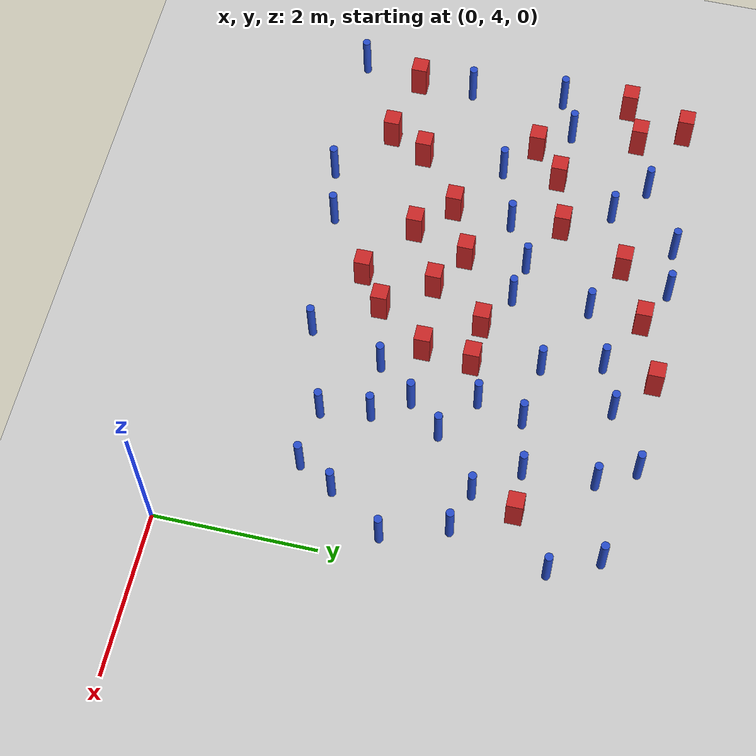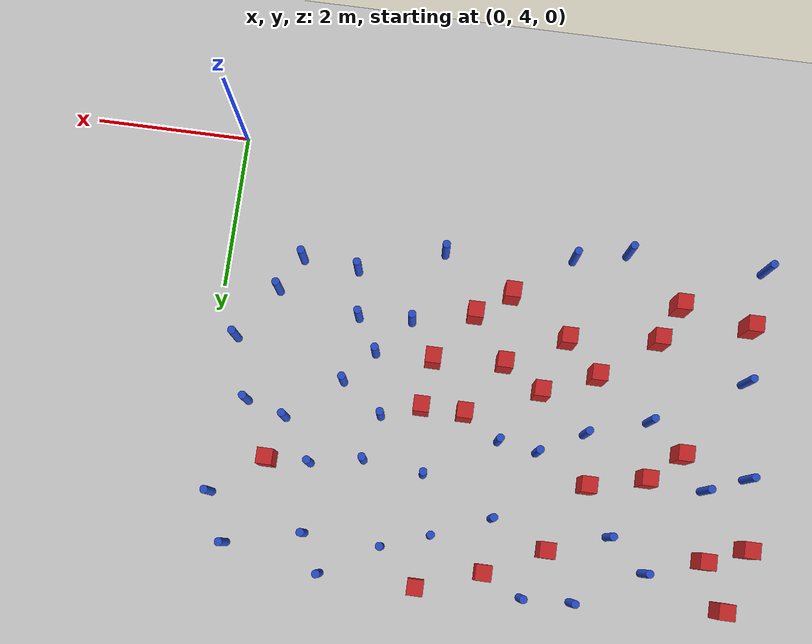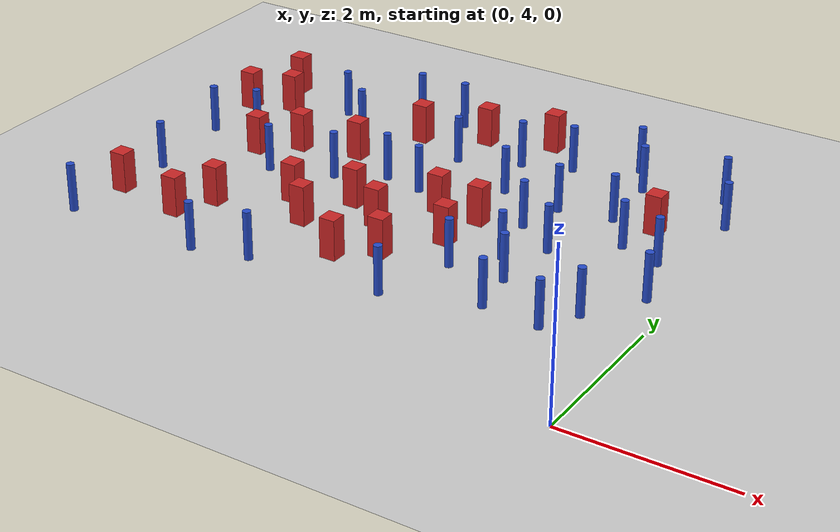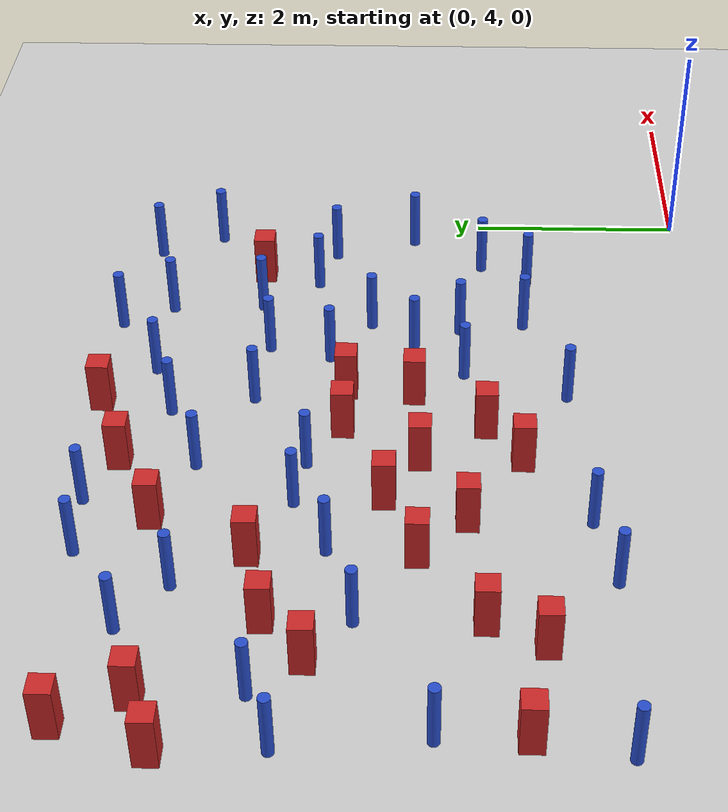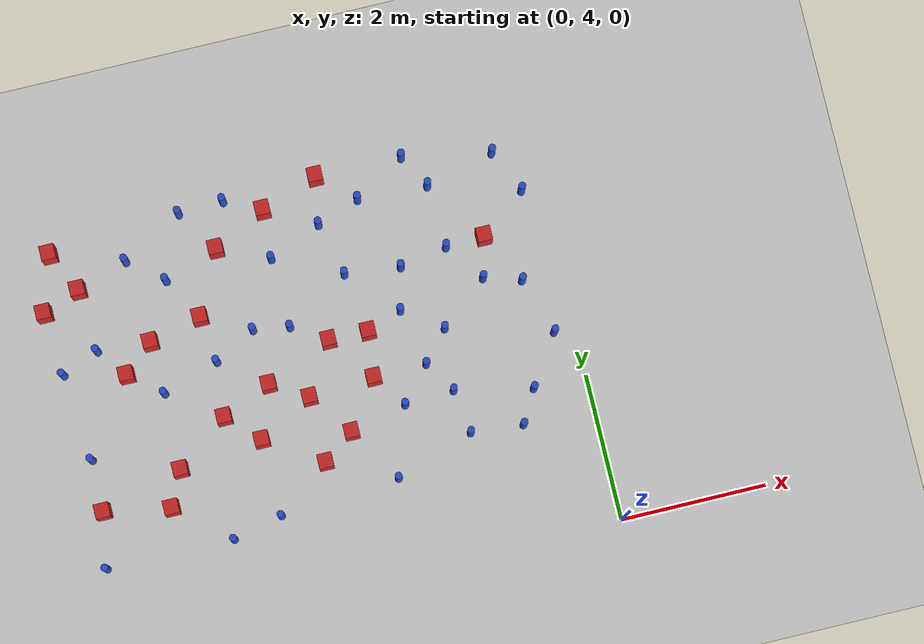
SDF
<sdf version="1.6">
 <world name="default">
  <model name="ground_plane">
   <static>1</static>
   <link name="link">
    <collision name="collision">
     <geometry><plane><normal>0 0 1</normal><size>100 100</size></plane></geometry>
     <surface><friction><ode><mu>100</mu><mu2>50</mu2></ode></friction></surface>
    </collision>
    <visual name="visual">
     <cast_shadows>0</cast_shadows>
     <geometry><plane><normal>0 0 1</normal><size>100 100</size></plane></geometry>
     <material>
      <ambient>1.0 1.0 1.0 1.0</ambient>
      <diffuse>0.8 0.8 0.8 1.0</diffuse>
      <specular>0.01 0.01 0.01 1.000000</specular>
     </material>
    </visual>
   </link>
  </model>
  <model name="square_post_obstacle0">
   <static>true</static>
   <pose>-6.67981917974 9.26460042865 8.22691968438e-08 7.22125133819e-06 -7.54495500217e-07 2.29674213826e-05</pose>
   <link name="link">
    <pose>0 0 0.25 0 -0 0</pose>
    <inertial>
     <mass>100</mass>
     <inertia>
      <ixx>0.166667</ixx>
      <ixy>0</ixy>
      <ixz>0</ixz>
      <iyy>0.166667</iyy>
      <iyz>0</iyz>
      <izz>0.166667</izz>
     </inertia>
    </inertial>
    <collision name="collision"><geometry><box><size>.2 .2 .5</size></box></geometry></collision>
    <visual name="visual">
     <geometry><box><size>.2 .2 .5</size></box></geometry>
     <material>
      <script><name>Gazebo/Red</name><uri>file://media/materials/scripts/gazebo.material</uri></script>
     </material>
    </visual>
   </link>
  </model>
  <model name="square_post_obstacle1">
   <static>true</static>
   <pose>-4.19881178517 6.86529682707 8.22691968438e-08 7.2212513382e-06 -7.54495500217e-07 2.29674213826e-05</pose>
   <link name="link">
    <pose>0 0 0.25 0 -0 0</pose>
    <inertial>
     <mass>100</mass>
     <inertia>
      <ixx>0.166667</ixx>
      <ixy>0</ixy>
      <ixz>0</ixz>
      <iyy>0.166667</iyy>
      <iyz>0</iyz>
      <izz>0.166667</izz>
     </inertia>
    </inertial>
    <collision name="collision"><geometry><box><size>.2 .2 .5</size></box></geometry></collision>
    <visual name="visual">
     <geometry><box><size>.2 .2 .5</size></box></geometry>
     <material>
      <script><name>Gazebo/Red</name><uri>file://media/materials/scripts/gazebo.material</uri></script>
     </material>
    </visual>
   </link>
  </model>
  <model name="pole_obstacle6">
   <static>true</static>
   <pose>-2.10042866852 8.00277841982 2.88873142074e-08 -9.90536689889e-09 4.60219948988e-07 -1.2096599496e-07</pose>
   <link name="link">
    <pose>0 0 0.3 0 -0 0</pose>
    <inertial>
     <mass>1</mass>
     <inertia><ixx>0.145833</ixx><ixy>0</ixy><ixz>0</ixz><iyy>0.145833</iyy><iyz>0</iyz><izz>0.125</izz></inertia>
    </inertial>
    <collision name="collision">
     <geometry><cylinder><radius>0.05</radius><length>.6</length></cylinder></geometry>
    </collision>
    <visual name="visual">
     <geometry><cylinder><radius>0.05</radius><length>.6</length></cylinder></geometry>
     <material>
      <script><name>Gazebo/Blue</name><uri>file://media/materials/scripts/gazebo.material</uri></script>
     </material>
    </visual>
   </link>
  </model>
  <model name="pole_obstacle7">
   <static>true</static>
   <pose>-1.79756553339 6.20950631164 2.88873142074e-08 -9.90536689852e-09 4.60219948989e-07 -1.2096599496e-07</pose>
   <link name="link">
    <pose>0 0 0.3 0 -0 0</pose>
    <inertial>
     <mass>1</mass>
     <inertia><ixx>0.145833</ixx><ixy>0</ixy><ixz>0</ixz><iyy>0.145833</iyy><iyz>0</iyz><izz>0.125</izz></inertia>
    </inertial>
    <collision name="collision">
     <geometry><cylinder><radius>0.05</radius><length>.6</length></cylinder></geometry>
    </collision>
    <visual name="visual">
     <geometry><cylinder><radius>0.05</radius><length>.6</length></cylinder></geometry>
     <material>
      <script><name>Gazebo/Blue</name><uri>file://media/materials/scripts/gazebo.material</uri></script>
     </material>
    </visual>
   </link>
  </model>
  <model name="square_post_obstacle7">
   <static>true</static>
   <pose>-3.26198819976 5.98409648104 8.22691968438e-08 7.2212513382e-06 -7.54495500217e-07 2.29674213826e-05</pose>
   <link name="link">
    <pose>0 0 0.25 0 -0 0</pose>
    <inertial>
     <mass>100</mass>
     <inertia>
      <ixx>0.166667</ixx>
      <ixy>0</ixy>
      <ixz>0</ixz>
      <iyy>0.166667</iyy>
      <iyz>0</iyz>
      <izz>0.166667</izz>
     </inertia>
    </inertial>
    <collision name="collision"><geometry><box><size>.2 .2 .5</size></box></geometry></collision>
    <visual name="visual">
     <geometry><box><size>.2 .2 .5</size></box></geometry>
     <material>
      <script><name>Gazebo/Red</name><uri>file://media/materials/scripts/gazebo.material</uri></script>
     </material>
    </visual>
   </link>
  </model>
  <model name="square_post_obstacle15">
   <static>true</static>
   <pose>-4.89100459471 7.96523199938 8.22691968438e-08 7.22125133819e-06 -7.54495500217e-07 2.29674213826e-05</pose>
   <link name="link">
    <pose>0 0 0.25 0 -0 0</pose>
    <inertial>
     <mass>100</mass>
     <inertia>
      <ixx>0.166667</ixx>
      <ixy>0</ixy>
      <ixz>0</ixz>
      <iyy>0.166667</iyy>
      <iyz>0</iyz>
      <izz>0.166667</izz>
     </inertia>
    </inertial>
    <collision name="collision"><geometry><box><size>.2 .2 .5</size></box></geometry></collision>
    <visual name="visual">
     <geometry><box><size>.2 .2 .5</size></box></geometry>
     <material>
      <script><name>Gazebo/Red</name><uri>file://media/materials/scripts/gazebo.material</uri></script>
     </material>
    </visual>
   </link>
  </model>
  <model name="pole_obstacle21">
   <static>true</static>
   <pose>-1.49366905084 8.99650755007 2.88873142074e-08 -9.90536690474e-09 4.60219948974e-07 -1.2096599497e-07</pose>
   <link name="link">
    <pose>0 0 0.3 0 -0 0</pose>
    <inertial>
     <mass>1</mass>
     <inertia><ixx>0.145833</ixx><ixy>0</ixy><ixz>0</ixz><iyy>0.145833</iyy><iyz>0</iyz><izz>0.125</izz></inertia>
    </inertial>
    <collision name="collision">
     <geometry><cylinder><radius>0.05</radius><length>.6</length></cylinder></geometry>
    </collision>
    <visual name="visual">
     <geometry><cylinder><radius>0.05</radius><length>.6</length></cylinder></geometry>
     <material>
      <script><name>Gazebo/Blue</name><uri>file://media/materials/scripts/gazebo.material</uri></script>
     </material>
    </visual>
   </link>
  </model>
  <model name="pole_obstacle23">
   <static>true</static>
   <pose>-2.24320302553 7.42743738108 2.88873142074e-08 -9.90536689859e-09 4.60219948989e-07 -1.20965994961e-07</pose>
   <link name="link">
    <pose>0 0 0.3 0 -0 0</pose>
    <inertial>
     <mass>1</mass>
     <inertia><ixx>0.145833</ixx><ixy>0</ixy><ixz>0</ixz><iyy>0.145833</iyy><iyz>0</iyz><izz>0.125</izz></inertia>
    </inertial>
    <collision name="collision">
     <geometry><cylinder><radius>0.05</radius><length>.6</length></cylinder></geometry>
    </collision>
    <visual name="visual">
     <geometry><cylinder><radius>0.05</radius><length>.6</length></cylinder></geometry>
     <material>
      <script><name>Gazebo/Blue</name><uri>file://media/materials/scripts/gazebo.material</uri></script>
     </material>
    </visual>
   </link>
  </model>
  <model name="pole_obstacle26">
   <static>true</static>
   <pose>-4.2388018234 7.63322345365 2.88873142074e-08 -9.90536690842e-09 4.60219948965e-07 -1.20965994976e-07</pose>
   <link name="link">
    <pose>0 0 0.3 0 -0 0</pose>
    <inertial>
     <mass>1</mass>
     <inertia><ixx>0.145833</ixx><ixy>0</ixy><ixz>0</ixz><iyy>0.145833</iyy><iyz>0</iyz><izz>0.125</izz></inertia>
    </inertial>
    <collision name="collision">
     <geometry><cylinder><radius>0.05</radius><length>.6</length></cylinder></geometry>
    </collision>
    <visual name="visual">
     <geometry><cylinder><radius>0.05</radius><length>.6</length></cylinder></geometry>
     <material>
      <script><name>Gazebo/Blue</name><uri>file://media/materials/scripts/gazebo.material</uri></script>
     </material>
    </visual>
   </link>
  </model>
  <model name="square_post_obstacle23">
   <static>true</static>
   <pose>-3.73986535788 9.18537026486 8.22691968438e-08 7.22125133819e-06 -7.54495500217e-07 2.29674213826e-05</pose>
   <link name="link">
    <pose>0 0 0.25 0 -0 0</pose>
    <inertial>
     <mass>100</mass>
     <inertia>
      <ixx>0.166667</ixx>
      <ixy>0</ixy>
      <ixz>0</ixz>
      <iyy>0.166667</iyy>
      <iyz>0</iyz>
      <izz>0.166667</izz>
     </inertia>
    </inertial>
    <collision name="collision"><geometry><box><size>.2 .2 .5</size></box></geometry></collision>
    <visual name="visual">
     <geometry><box><size>.2 .2 .5</size></box></geometry>
     <material>
      <script><name>Gazebo/Red</name><uri>file://media/materials/scripts/gazebo.material</uri></script>
     </material>
    </visual>
   </link>
  </model>
  <model name="pole_obstacle32">
   <static>true</static>
   <pose>-1.70606971213 5.60189419661 2.88873142074e-08 -9.90536689852e-09 4.60219948989e-07 -1.2096599496e-07</pose>
   <link name="link">
    <pose>0 0 0.3 0 -0 0</pose>
    <inertial>
     <mass>1</mass>
     <inertia><ixx>0.145833</ixx><ixy>0</ixy><ixz>0</ixz><iyy>0.145833</iyy><iyz>0</iyz><izz>0.125</izz></inertia>
    </inertial>
    <collision name="collision">
     <geometry><cylinder><radius>0.05</radius><length>.6</length></cylinder></geometry>
    </collision>
    <visual name="visual">
     <geometry><cylinder><radius>0.05</radius><length>.6</length></cylinder></geometry>
     <material>
      <script><name>Gazebo/Blue</name><uri>file://media/materials/scripts/gazebo.material</uri></script>
     </material>
    </visual>
   </link>
  </model>
  <model name="pole_obstacle42">
   <static>true</static>
   <pose>-2.86360765119 8.08487156467 2.88873142074e-08 -9.90536692318e-09 4.6021994893e-07 -1.20965994988e-07</pose>
   <link name="link">
    <pose>0 0 0.3 0 -0 0</pose>
    <inertial>
     <mass>1</mass>
     <inertia><ixx>0.145833</ixx><ixy>0</ixy><ixz>0</ixz><iyy>0.145833</iyy><iyz>0</iyz><izz>0.125</izz></inertia>
    </inertial>
    <collision name="collision">
     <geometry><cylinder><radius>0.05</radius><length>.6</length></cylinder></geometry>
    </collision>
    <visual name="visual">
     <geometry><cylinder><radius>0.05</radius><length>.6</length></cylinder></geometry>
     <material>
      <script><name>Gazebo/Blue</name><uri>file://media/materials/scripts/gazebo.material</uri></script>
     </material>
    </visual>
   </link>
  </model>
  <model name="pole_obstacle50">
   <static>true</static>
   <pose>-1.74978518469 9.45721656947 2.88873142074e-08 -9.90536690474e-09 4.60219948974e-07 -1.2096599497e-07</pose>
   <link name="link">
    <pose>0 0 0.3 0 -0 0</pose>
    <inertial>
     <mass>1</mass>
     <inertia><ixx>0.145833</ixx><ixy>0</ixy><ixz>0</ixz><iyy>0.145833</iyy><iyz>0</iyz><izz>0.125</izz></inertia>
    </inertial>
    <collision name="collision">
     <geometry><cylinder><radius>0.05</radius><length>.6</length></cylinder></geometry>
    </collision>
    <visual name="visual">
     <geometry><cylinder><radius>0.05</radius><length>.6</length></cylinder></geometry>
     <material>
      <script><name>Gazebo/Blue</name><uri>file://media/materials/scripts/gazebo.material</uri></script>
     </material>
    </visual>
   </link>
  </model>
  <model name="pole_obstacle59">
   <static>true</static>
   <pose>-1.7176271614 7.0541179668 2.88873142074e-08 -9.90536689852e-09 4.60219948989e-07 -1.2096599496e-07</pose>
   <link name="link">
    <pose>0 0 0.3 0 -0 0</pose>
    <inertial>
     <mass>1</mass>
     <inertia><ixx>0.145833</ixx><ixy>0</ixy><ixz>0</ixz><iyy>0.145833</iyy><iyz>0</iyz><izz>0.125</izz></inertia>
    </inertial>
    <collision name="collision">
     <geometry><cylinder><radius>0.05</radius><length>.6</length></cylinder></geometry>
    </collision>
    <visual name="visual">
     <geometry><cylinder><radius>0.05</radius><length>.6</length></cylinder></geometry>
     <material>
      <script><name>Gazebo/Blue</name><uri>file://media/materials/scripts/gazebo.material</uri></script>
     </material>
    </visual>
   </link>
  </model>
  <model name="square_post_obstacle47">
   <static>true</static>
   <pose>-5.60874423874 6.0205584881 8.22691968438e-08 7.22125133819e-06 -7.54495500217e-07 2.29674213826e-05</pose>
   <link name="link">
    <pose>0 0 0.25 0 -0 0</pose>
    <inertial>
     <mass>100</mass>
     <inertia>
      <ixx>0.166667</ixx>
      <ixy>0</ixy>
      <ixz>0</ixz>
      <iyy>0.166667</iyy>
      <iyz>0</iyz>
      <izz>0.166667</izz>
     </inertia>
    </inertial>
    <collision name="collision"><geometry><box><size>.2 .2 .5</size></box></geometry></collision>
    <visual name="visual">
     <geometry><box><size>.2 .2 .5</size></box></geometry>
     <material>
      <script><name>Gazebo/Red</name><uri>file://media/materials/scripts/gazebo.material</uri></script>
     </material>
    </visual>
   </link>
  </model>
  <model name="pole_obstacle63">
   <static>true</static>
   <pose>-4.81017805617 7.32575918591 2.88873142074e-08 -9.90536690842e-09 4.60219948965e-07 -1.20965994976e-07</pose>
   <link name="link">
    <pose>0 0 0.3 0 -0 0</pose>
    <inertial>
     <mass>1</mass>
     <inertia><ixx>0.145833</ixx><ixy>0</ixy><ixz>0</ixz><iyy>0.145833</iyy><iyz>0</iyz><izz>0.125</izz></inertia>
    </inertial>
    <collision name="collision">
     <geometry><cylinder><radius>0.05</radius><length>.6</length></cylinder></geometry>
    </collision>
    <visual name="visual">
     <geometry><cylinder><radius>0.05</radius><length>.6</length></cylinder></geometry>
     <material>
      <script><name>Gazebo/Blue</name><uri>file://media/materials/scripts/gazebo.material</uri></script>
     </material>
    </visual>
   </link>
  </model>
  <model name="square_post_obstacle68">
   <static>true</static>
   <pose>-3.27885702081 7.25955403216 8.22691968438e-08 7.2212513382e-06 -7.54495500217e-07 2.29674213826e-05</pose>
   <link name="link">
    <pose>0 0 0.25 0 -0 0</pose>
    <inertial>
     <mass>100</mass>
     <inertia>
      <ixx>0.166667</ixx>
      <ixy>0</ixy>
      <ixz>0</ixz>
      <iyy>0.166667</iyy>
      <iyz>0</iyz>
      <izz>0.166667</izz>
     </inertia>
    </inertial>
    <collision name="collision"><geometry><box><size>.2 .2 .5</size></box></geometry></collision>
    <visual name="visual">
     <geometry><box><size>.2 .2 .5</size></box></geometry>
     <material>
      <script><name>Gazebo/Red</name><uri>file://media/materials/scripts/gazebo.material</uri></script>
     </material>
    </visual>
   </link>
  </model>
  <model name="pole_obstacle81">
   <static>true</static>
   <pose>-4.43607950062 5.10359029411 2.88873142074e-08 -9.90536690842e-09 4.60219948965e-07 -1.20965994976e-07</pose>
   <link name="link">
    <pose>0 0 0.3 0 -0 0</pose>
    <inertial>
     <mass>1</mass>
     <inertia><ixx>0.145833</ixx><ixy>0</ixy><ixz>0</ixz><iyy>0.145833</iyy><iyz>0</iyz><izz>0.125</izz></inertia>
    </inertial>
    <collision name="collision">
     <geometry><cylinder><radius>0.05</radius><length>.6</length></cylinder></geometry>
    </collision>
    <visual name="visual">
     <geometry><cylinder><radius>0.05</radius><length>.6</length></cylinder></geometry>
     <material>
      <script><name>Gazebo/Blue</name><uri>file://media/materials/scripts/gazebo.material</uri></script>
     </material>
    </visual>
   </link>
  </model>
  <model name="square_post_obstacle73">
   <static>true</static>
   <pose>-4.88146126372 6.57398813843 8.22691968438e-08 7.22125133819e-06 -7.54495500217e-07 2.29674213826e-05</pose>
   <link name="link">
    <pose>0 0 0.25 0 -0 0</pose>
    <inertial>
     <mass>100</mass>
     <inertia>
      <ixx>0.166667</ixx>
      <ixy>0</ixy>
      <ixz>0</ixz>
      <iyy>0.166667</iyy>
      <iyz>0</iyz>
      <izz>0.166667</izz>
     </inertia>
    </inertial>
    <collision name="collision"><geometry><box><size>.2 .2 .5</size></box></geometry></collision>
    <visual name="visual">
     <geometry><box><size>.2 .2 .5</size></box></geometry>
     <material>
      <script><name>Gazebo/Red</name><uri>file://media/materials/scripts/gazebo.material</uri></script>
     </material>
    </visual>
   </link>
  </model>
  <model name="pole_obstacle90">
   <static>true</static>
   <pose>-6.34456863487 7.83845731355 2.88873142074e-08 -9.90536690842e-09 4.60219948965e-07 -1.20965994976e-07</pose>
   <link name="link">
    <pose>0 0 0.3 0 -0 0</pose>
    <inertial>
     <mass>1</mass>
     <inertia><ixx>0.145833</ixx><ixy>0</ixy><ixz>0</ixz><iyy>0.145833</iyy><iyz>0</iyz><izz>0.125</izz></inertia>
    </inertial>
    <collision name="collision">
     <geometry><cylinder><radius>0.05</radius><length>.6</length></cylinder></geometry>
    </collision>
    <visual name="visual">
     <geometry><cylinder><radius>0.05</radius><length>.6</length></cylinder></geometry>
     <material>
      <script><name>Gazebo/Blue</name><uri>file://media/materials/scripts/gazebo.material</uri></script>
     </material>
    </visual>
   </link>
  </model>
  <model name="square_post_obstacle85">
   <static>true</static>
   <pose>-6.74583127834 5.71014274825 8.22691968438e-08 7.2212513382e-06 -7.54495500217e-07 2.29674213826e-05</pose>
   <link name="link">
    <pose>0 0 0.25 0 -0 0</pose>
    <inertial>
     <mass>100</mass>
     <inertia>
      <ixx>0.166667</ixx>
      <ixy>0</ixy>
      <ixz>0</ixz>
      <iyy>0.166667</iyy>
      <iyz>0</iyz>
      <izz>0.166667</izz>
     </inertia>
    </inertial>
    <collision name="collision"><geometry><box><size>.2 .2 .5</size></box></geometry></collision>
    <visual name="visual">
     <geometry><box><size>.2 .2 .5</size></box></geometry>
     <material>
      <script><name>Gazebo/Red</name><uri>file://media/materials/scripts/gazebo.material</uri></script>
     </material>
    </visual>
   </link>
  </model>
  <model name="pole_obstacle94">
   <static>true</static>
   <pose>-6.74281036302 6.42496846042 2.88873142074e-08 -9.90536690842e-09 4.60219948965e-07 -1.20965994976e-07</pose>
   <link name="link">
    <pose>0 0 0.3 0 -0 0</pose>
    <inertial>
     <mass>1</mass>
     <inertia><ixx>0.145833</ixx><ixy>0</ixy><ixz>0</ixz><iyy>0.145833</iyy><iyz>0</iyz><izz>0.125</izz></inertia>
    </inertial>
    <collision name="collision">
     <geometry><cylinder><radius>0.05</radius><length>.6</length></cylinder></geometry>
    </collision>
    <visual name="visual">
     <geometry><cylinder><radius>0.05</radius><length>.6</length></cylinder></geometry>
     <material>
      <script><name>Gazebo/Blue</name><uri>file://media/materials/scripts/gazebo.material</uri></script>
     </material>
    </visual>
   </link>
  </model>
  <model name="pole_obstacle95">
   <static>true</static>
   <pose>-0.73805103596 5.98754089654 2.88873142074e-08 -9.90536689661e-09 4.60219948993e-07 -1.20965994957e-07</pose>
   <link name="link">
    <pose>0 0 0.3 0 -0 0</pose>
    <inertial>
     <mass>1</mass>
     <inertia><ixx>0.145833</ixx><ixy>0</ixy><ixz>0</ixz><iyy>0.145833</iyy><iyz>0</iyz><izz>0.125</izz></inertia>
    </inertial>
    <collision name="collision">
     <geometry><cylinder><radius>0.05</radius><length>.6</length></cylinder></geometry>
    </collision>
    <visual name="visual">
     <geometry><cylinder><radius>0.05</radius><length>.6</length></cylinder></geometry>
     <material>
      <script><name>Gazebo/Blue</name><uri>file://media/materials/scripts/gazebo.material</uri></script>
     </material>
    </visual>
   </link>
  </model>
  <model name="pole_obstacle98">
   <static>true</static>
   <pose>-3.77718086879 8.51673157976 2.88873142074e-08 -9.90536692318e-09 4.6021994893e-07 -1.20965994988e-07</pose>
   <link name="link">
    <pose>0 0 0.3 0 -0 0</pose>
    <inertial>
     <mass>1</mass>
     <inertia><ixx>0.145833</ixx><ixy>0</ixy><ixz>0</ixz><iyy>0.145833</iyy><iyz>0</iyz><izz>0.125</izz></inertia>
    </inertial>
    <collision name="collision">
     <geometry><cylinder><radius>0.05</radius><length>.6</length></cylinder></geometry>
    </collision>
    <visual name="visual">
     <geometry><cylinder><radius>0.05</radius><length>.6</length></cylinder></geometry>
     <material>
      <script><name>Gazebo/Blue</name><uri>file://media/materials/scripts/gazebo.material</uri></script>
     </material>
    </visual>
   </link>
  </model>
  <model name="square_post_obstacle94">
   <static>true</static>
   <pose>-3.6944621741 5.66760927233 8.22691968438e-08 7.2212513382e-06 -7.54495500217e-07 2.29674213826e-05</pose>
   <link name="link">
    <pose>0 0 0.25 0 -0 0</pose>
    <inertial>
     <mass>100</mass>
     <inertia>
      <ixx>0.166667</ixx>
      <ixy>0</ixy>
      <ixz>0</ixz>
      <iyy>0.166667</iyy>
      <iyz>0</iyz>
      <izz>0.166667</izz>
     </inertia>
    </inertial>
    <collision name="collision"><geometry><box><size>.2 .2 .5</size></box></geometry></collision>
    <visual name="visual">
     <geometry><box><size>.2 .2 .5</size></box></geometry>
     <material>
      <script><name>Gazebo/Red</name><uri>file://media/materials/scripts/gazebo.material</uri></script>
     </material>
    </visual>
   </link>
  </model>
  <model name="square_post_obstacle104">
   <static>true</static>
   <pose>-5.61728617556 7.78923323309 8.22691968438e-08 7.22125133819e-06 -7.54495500217e-07 2.29674213826e-05</pose>
   <link name="link">
    <pose>0 0 0.25 0 -0 0</pose>
    <inertial>
     <mass>100</mass>
     <inertia>
      <ixx>0.166667</ixx>
      <ixy>0</ixy>
      <ixz>0</ixz>
      <iyy>0.166667</iyy>
      <iyz>0</iyz>
      <izz>0.166667</izz>
     </inertia>
    </inertial>
    <collision name="collision"><geometry><box><size>.2 .2 .5</size></box></geometry></collision>
    <visual name="visual">
     <geometry><box><size>.2 .2 .5</size></box></geometry>
     <material>
      <script><name>Gazebo/Red</name><uri>file://media/materials/scripts/gazebo.material</uri></script>
     </material>
    </visual>
   </link>
  </model>
  <model name="square_post_obstacle110">
   <static>true</static>
   <pose>-6.0286290084 7.43046755484 8.22691968438e-08 7.22125133819e-06 -7.54495500217e-07 2.29674213826e-05</pose>
   <link name="link">
    <pose>0 0 0.25 0 -0 0</pose>
    <inertial>
     <mass>100</mass>
     <inertia>
      <ixx>0.166667</ixx>
      <ixy>0</ixy>
      <ixz>0</ixz>
      <iyy>0.166667</iyy>
      <iyz>0</iyz>
      <izz>0.166667</izz>
     </inertia>
    </inertial>
    <collision name="collision"><geometry><box><size>.2 .2 .5</size></box></geometry></collision>
    <visual name="visual">
     <geometry><box><size>.2 .2 .5</size></box></geometry>
     <material>
      <script><name>Gazebo/Red</name><uri>file://media/materials/scripts/gazebo.material</uri></script>
     </material>
    </visual>
   </link>
  </model>
  <model name="pole_obstacle114">
   <static>true</static>
   <pose>-0.268147037343 8.64037561908 2.88873142074e-08 -9.90536690955e-09 4.60219948963e-07 -1.20965994979e-07</pose>
   <link name="link">
    <pose>0 0 0.3 0 -0 0</pose>
    <inertial>
     <mass>1</mass>
     <inertia><ixx>0.145833</ixx><ixy>0</ixy><ixz>0</ixz><iyy>0.145833</iyy><iyz>0</iyz><izz>0.125</izz></inertia>
    </inertial>
    <collision name="collision">
     <geometry><cylinder><radius>0.05</radius><length>.6</length></cylinder></geometry>
    </collision>
    <visual name="visual">
     <geometry><cylinder><radius>0.05</radius><length>.6</length></cylinder></geometry>
     <material>
      <script><name>Gazebo/Blue</name><uri>file://media/materials/scripts/gazebo.material</uri></script>
     </material>
    </visual>
   </link>
  </model>
  <model name="square_post_obstacle118">
   <static>true</static>
   <pose>-4.45799584196 6.15802493152 8.22691968438e-08 7.22125133819e-06 -7.54495500217e-07 2.29674213826e-05</pose>
   <link name="link">
    <pose>0 0 0.25 0 -0 0</pose>
    <inertial>
     <mass>100</mass>
     <inertia>
      <ixx>0.166667</ixx>
      <ixy>0</ixy>
      <ixz>0</ixz>
      <iyy>0.166667</iyy>
      <iyz>0</iyz>
      <izz>0.166667</izz>
     </inertia>
    </inertial>
    <collision name="collision"><geometry><box><size>.2 .2 .5</size></box></geometry></collision>
    <visual name="visual">
     <geometry><box><size>.2 .2 .5</size></box></geometry>
     <material>
      <script><name>Gazebo/Red</name><uri>file://media/materials/scripts/gazebo.material</uri></script>
     </material>
    </visual>
   </link>
  </model>
  <model name="pole_obstacle118">
   <static>true</static>
   <pose>-3.05082719184 8.8229324649 2.88873142074e-08 -9.90536692318e-09 4.6021994893e-07 -1.20965994988e-07</pose>
   <link name="link">
    <pose>0 0 0.3 0 -0 0</pose>
    <inertial>
     <mass>1</mass>
     <inertia><ixx>0.145833</ixx><ixy>0</ixy><ixz>0</ixz><iyy>0.145833</iyy><iyz>0</iyz><izz>0.125</izz></inertia>
    </inertial>
    <collision name="collision">
     <geometry><cylinder><radius>0.05</radius><length>.6</length></cylinder></geometry>
    </collision>
    <visual name="visual">
     <geometry><cylinder><radius>0.05</radius><length>.6</length></cylinder></geometry>
     <material>
      <script><name>Gazebo/Blue</name><uri>file://media/materials/scripts/gazebo.material</uri></script>
     </material>
    </visual>
   </link>
  </model>
  <model name="square_post_obstacle120">
   <static>true</static>
   <pose>-5.83935906088 5.5463359316 8.22691968438e-08 7.2212513382e-06 -7.54495500217e-07 2.29674213826e-05</pose>
   <link name="link">
    <pose>0 0 0.25 0 -0 0</pose>
    <inertial>
     <mass>100</mass>
     <inertia>
      <ixx>0.166667</ixx>
      <ixy>0</ixy>
      <ixz>0</ixz>
      <iyy>0.166667</iyy>
      <iyz>0</iyz>
      <izz>0.166667</izz>
     </inertia>
    </inertial>
    <collision name="collision"><geometry><box><size>.2 .2 .5</size></box></geometry></collision>
    <visual name="visual">
     <geometry><box><size>.2 .2 .5</size></box></geometry>
     <material>
      <script><name>Gazebo/Red</name><uri>file://media/materials/scripts/gazebo.material</uri></script>
     </material>
    </visual>
   </link>
  </model>
  <model name="pole_obstacle122">
   <static>true</static>
   <pose>-5.58905925405 7.07097811996 2.88873142074e-08 -9.90536690842e-09 4.60219948965e-07 -1.20965994976e-07</pose>
   <link name="link">
    <pose>0 0 0.3 0 -0 0</pose>
    <inertial>
     <mass>1</mass>
     <inertia><ixx>0.145833</ixx><ixy>0</ixy><ixz>0</ixz><iyy>0.145833</iyy><iyz>0</iyz><izz>0.125</izz></inertia>
    </inertial>
    <collision name="collision">
     <geometry><cylinder><radius>0.05</radius><length>.6</length></cylinder></geometry>
    </collision>
    <visual name="visual">
     <geometry><cylinder><radius>0.05</radius><length>.6</length></cylinder></geometry>
     <material>
      <script><name>Gazebo/Blue</name><uri>file://media/materials/scripts/gazebo.material</uri></script>
     </material>
    </visual>
   </link>
  </model>
  <model name="pole_obstacle123">
   <static>true</static>
   <pose>-1.05472062454 7.59962242424 2.88873142074e-08 -9.90536689852e-09 4.60219948989e-07 -1.2096599496e-07</pose>
   <link name="link">
    <pose>0 0 0.3 0 -0 0</pose>
    <inertial>
     <mass>1</mass>
     <inertia><ixx>0.145833</ixx><ixy>0</ixy><ixz>0</ixz><iyy>0.145833</iyy><iyz>0</iyz><izz>0.125</izz></inertia>
    </inertial>
    <collision name="collision">
     <geometry><cylinder><radius>0.05</radius><length>.6</length></cylinder></geometry>
    </collision>
    <visual name="visual">
     <geometry><cylinder><radius>0.05</radius><length>.6</length></cylinder></geometry>
     <material>
      <script><name>Gazebo/Blue</name><uri>file://media/materials/scripts/gazebo.material</uri></script>
     </material>
    </visual>
   </link>
  </model>
  <model name="pole_obstacle127">
   <static>true</static>
   <pose>-5.12309768506 4.94131214117 2.88873142074e-08 -9.90536690842e-09 4.60219948965e-07 -1.20965994976e-07</pose>
   <link name="link">
    <pose>0 0 0.3 0 -0 0</pose>
    <inertial>
     <mass>1</mass>
     <inertia><ixx>0.145833</ixx><ixy>0</ixy><ixz>0</ixz><iyy>0.145833</iyy><iyz>0</iyz><izz>0.125</izz></inertia>
    </inertial>
    <collision name="collision">
     <geometry><cylinder><radius>0.05</radius><length>.6</length></cylinder></geometry>
    </collision>
    <visual name="visual">
     <geometry><cylinder><radius>0.05</radius><length>.6</length></cylinder></geometry>
     <material>
      <script><name>Gazebo/Blue</name><uri>file://media/materials/scripts/gazebo.material</uri></script>
     </material>
    </visual>
   </link>
  </model>
  <model name="square_post_obstacle129">
   <static>true</static>
   <pose>-4.47468869166 8.81699328404 8.22691968438e-08 7.22125133819e-06 -7.54495500217e-07 2.29674213826e-05</pose>
   <link name="link">
    <pose>0 0 0.25 0 -0 0</pose>
    <inertial>
     <mass>100</mass>
     <inertia>
      <ixx>0.166667</ixx>
      <ixy>0</ixy>
      <ixz>0</ixz>
      <iyy>0.166667</iyy>
      <iyz>0</iyz>
      <izz>0.166667</izz>
     </inertia>
    </inertial>
    <collision name="collision"><geometry><box><size>.2 .2 .5</size></box></geometry></collision>
    <visual name="visual">
     <geometry><box><size>.2 .2 .5</size></box></geometry>
     <material>
      <script><name>Gazebo/Red</name><uri>file://media/materials/scripts/gazebo.material</uri></script>
     </material>
    </visual>
   </link>
  </model>
  <model name="pole_obstacle140">
   <static>true</static>
   <pose>-5.69948715814 8.93919780211 2.88873142074e-08 -9.9053668967e-09 4.60219948993e-07 -1.20965994957e-07</pose>
   <link name="link">
    <pose>0 0 0.3 0 -0 0</pose>
    <inertial>
     <mass>1</mass>
     <inertia><ixx>0.145833</ixx><ixy>0</ixy><ixz>0</ixz><iyy>0.145833</iyy><iyz>0</iyz><izz>0.125</izz></inertia>
    </inertial>
    <collision name="collision">
     <geometry><cylinder><radius>0.05</radius><length>.6</length></cylinder></geometry>
    </collision>
    <visual name="visual">
     <geometry><cylinder><radius>0.05</radius><length>.6</length></cylinder></geometry>
     <material>
      <script><name>Gazebo/Blue</name><uri>file://media/materials/scripts/gazebo.material</uri></script>
     </material>
    </visual>
   </link>
  </model>
  <model name="square_post_obstacle135">
   <static>true</static>
   <pose>-2.94527040376 9.46387634688 8.22691968438e-08 7.22125133819e-06 -7.54495500217e-07 2.29674213826e-05</pose>
   <link name="link">
    <pose>0 0 0.25 0 -0 0</pose>
    <inertial>
     <mass>100</mass>
     <inertia>
      <ixx>0.166667</ixx>
      <ixy>0</ixy>
      <ixz>0</ixz>
      <iyy>0.166667</iyy>
      <iyz>0</iyz>
      <izz>0.166667</izz>
     </inertia>
    </inertial>
    <collision name="collision"><geometry><box><size>.2 .2 .5</size></box></geometry></collision>
    <visual name="visual">
     <geometry><box><size>.2 .2 .5</size></box></geometry>
     <material>
      <script><name>Gazebo/Red</name><uri>file://media/materials/scripts/gazebo.material</uri></script>
     </material>
    </visual>
   </link>
  </model>
  <model name="pole_obstacle144">
   <static>true</static>
   <pose>-0.29097716648 6.6639655458 2.88873142074e-08 -9.90536689618e-09 4.60219948994e-07 -1.20965994956e-07</pose>
   <link name="link">
    <pose>0 0 0.3 0 -0 0</pose>
    <inertial>
     <mass>1</mass>
     <inertia><ixx>0.145833</ixx><ixy>0</ixy><ixz>0</ixz><iyy>0.145833</iyy><iyz>0</iyz><izz>0.125</izz></inertia>
    </inertial>
    <collision name="collision">
     <geometry><cylinder><radius>0.05</radius><length>.6</length></cylinder></geometry>
    </collision>
    <visual name="visual">
     <geometry><cylinder><radius>0.05</radius><length>.6</length></cylinder></geometry>
     <material>
      <script><name>Gazebo/Blue</name><uri>file://media/materials/scripts/gazebo.material</uri></script>
     </material>
    </visual>
   </link>
  </model>
  <model name="pole_obstacle147">
   <static>true</static>
   <pose>-2.45760845618 9.035502999 2.88873142074e-08 -9.90536692318e-09 4.6021994893e-07 -1.20965994988e-07</pose>
   <link name="link">
    <pose>0 0 0.3 0 -0 0</pose>
    <inertial>
     <mass>1</mass>
     <inertia><ixx>0.145833</ixx><ixy>0</ixy><ixz>0</ixz><iyy>0.145833</iyy><iyz>0</iyz><izz>0.125</izz></inertia>
    </inertial>
    <collision name="collision">
     <geometry><cylinder><radius>0.05</radius><length>.6</length></cylinder></geometry>
    </collision>
    <visual name="visual">
     <geometry><cylinder><radius>0.05</radius><length>.6</length></cylinder></geometry>
     <material>
      <script><name>Gazebo/Blue</name><uri>file://media/materials/scripts/gazebo.material</uri></script>
     </material>
    </visual>
   </link>
  </model>
  <model name="pole_obstacle151">
   <static>true</static>
   <pose>-5.22698978281 8.55695473465 2.88873142074e-08 -9.9053668967e-09 4.60219948993e-07 -1.20965994957e-07</pose>
   <link name="link">
    <pose>0 0 0.3 0 -0 0</pose>
    <inertial>
     <mass>1</mass>
     <inertia><ixx>0.145833</ixx><ixy>0</ixy><ixz>0</ixz><iyy>0.145833</iyy><iyz>0</iyz><izz>0.125</izz></inertia>
    </inertial>
    <collision name="collision">
     <geometry><cylinder><radius>0.05</radius><length>.6</length></cylinder></geometry>
    </collision>
    <visual name="visual">
     <geometry><cylinder><radius>0.05</radius><length>.6</length></cylinder></geometry>
     <material>
      <script><name>Gazebo/Blue</name><uri>file://media/materials/scripts/gazebo.material</uri></script>
     </material>
    </visual>
   </link>
  </model>
  <model name="pole_obstacle152">
   <static>true</static>
   <pose>-2.47566005837 6.17300467855 2.88873142074e-08 -9.90536689859e-09 4.60219948989e-07 -1.20965994961e-07</pose>
   <link name="link">
    <pose>0 0 0.3 0 -0 0</pose>
    <inertial>
     <mass>1</mass>
     <inertia><ixx>0.145833</ixx><ixy>0</ixy><ixz>0</ixz><iyy>0.145833</iyy><iyz>0</iyz><izz>0.125</izz></inertia>
    </inertial>
    <collision name="collision">
     <geometry><cylinder><radius>0.05</radius><length>.6</length></cylinder></geometry>
    </collision>
    <visual name="visual">
     <geometry><cylinder><radius>0.05</radius><length>.6</length></cylinder></geometry>
     <material>
      <script><name>Gazebo/Blue</name><uri>file://media/materials/scripts/gazebo.material</uri></script>
     </material>
    </visual>
   </link>
  </model>
  <model name="pole_obstacle153">
   <static>true</static>
   <pose>-3.74284589466 7.55507748917 2.88873142074e-08 -9.90536689859e-09 4.60219948989e-07 -1.20965994961e-07</pose>
   <link name="link">
    <pose>0 0 0.3 0 -0 0</pose>
    <inertial>
     <mass>1</mass>
     <inertia><ixx>0.145833</ixx><ixy>0</ixy><ixz>0</ixz><iyy>0.145833</iyy><iyz>0</iyz><izz>0.125</izz></inertia>
    </inertial>
    <collision name="collision">
     <geometry><cylinder><radius>0.05</radius><length>.6</length></cylinder></geometry>
    </collision>
    <visual name="visual">
     <geometry><cylinder><radius>0.05</radius><length>.6</length></cylinder></geometry>
     <material>
      <script><name>Gazebo/Blue</name><uri>file://media/materials/scripts/gazebo.material</uri></script>
     </material>
    </visual>
   </link>
  </model>
  <model name="pole_obstacle158">
   <static>true</static>
   <pose>-4.23755731048 9.43095494755 2.88873142074e-08 -9.9053668967e-09 4.60219948993e-07 -1.20965994957e-07</pose>
   <link name="link">
    <pose>0 0 0.3 0 -0 0</pose>
    <inertial>
     <mass>1</mass>
     <inertia><ixx>0.145833</ixx><ixy>0</ixy><ixz>0</ixz><iyy>0.145833</iyy><iyz>0</iyz><izz>0.125</izz></inertia>
    </inertial>
    <collision name="collision">
     <geometry><cylinder><radius>0.05</radius><length>.6</length></cylinder></geometry>
    </collision>
    <visual name="visual">
     <geometry><cylinder><radius>0.05</radius><length>.6</length></cylinder></geometry>
     <material>
      <script><name>Gazebo/Blue</name><uri>file://media/materials/scripts/gazebo.material</uri></script>
     </material>
    </visual>
   </link>
  </model>
  <model name="pole_obstacle160">
   <static>true</static>
   <pose>-2.07117219895 6.64225941339 2.88873142074e-08 -9.90536689859e-09 4.60219948989e-07 -1.20965994961e-07</pose>
   <link name="link">
    <pose>0 0 0.3 0 -0 0</pose>
    <inertial>
     <mass>1</mass>
     <inertia><ixx>0.145833</ixx><ixy>0</ixy><ixz>0</ixz><iyy>0.145833</iyy><iyz>0</iyz><izz>0.125</izz></inertia>
    </inertial>
    <collision name="collision">
     <geometry><cylinder><radius>0.05</radius><length>.6</length></cylinder></geometry>
    </collision>
    <visual name="visual">
     <geometry><cylinder><radius>0.05</radius><length>.6</length></cylinder></geometry>
     <material>
      <script><name>Gazebo/Blue</name><uri>file://media/materials/scripts/gazebo.material</uri></script>
     </material>
    </visual>
   </link>
  </model>
  <model name="pole_obstacle161">
   <static>true</static>
   <pose>-0.540642689439 9.2347972044 2.88873142074e-08 -9.90536691171e-09 4.60219948957e-07 -1.20965994981e-07</pose>
   <link name="link">
    <pose>0 0 0.3 0 -0 0</pose>
    <inertial>
     <mass>1</mass>
     <inertia><ixx>0.145833</ixx><ixy>0</ixy><ixz>0</ixz><iyy>0.145833</iyy><iyz>0</iyz><izz>0.125</izz></inertia>
    </inertial>
    <collision name="collision">
     <geometry><cylinder><radius>0.05</radius><length>.6</length></cylinder></geometry>
    </collision>
    <visual name="visual">
     <geometry><cylinder><radius>0.05</radius><length>.6</length></cylinder></geometry>
     <material>
      <script><name>Gazebo/Blue</name><uri>file://media/materials/scripts/gazebo.material</uri></script>
     </material>
    </visual>
   </link>
  </model>
  <model name="square_post_obstacle156">
   <static>true</static>
   <pose>-6.40724606937 8.70198917638 8.22691968438e-08 7.22125133819e-06 -7.54495500217e-07 2.29674213826e-05</pose>
   <link name="link">
    <pose>0 0 0.25 0 -0 0</pose>
    <inertial>
     <mass>100</mass>
     <inertia>
      <ixx>0.166667</ixx>
      <ixy>0</ixy>
      <ixz>0</ixz>
      <iyy>0.166667</iyy>
      <iyz>0</iyz>
      <izz>0.166667</izz>
     </inertia>
    </inertial>
    <collision name="collision"><geometry><box><size>.2 .2 .5</size></box></geometry></collision>
    <visual name="visual">
     <geometry><box><size>.2 .2 .5</size></box></geometry>
     <material>
      <script><name>Gazebo/Red</name><uri>file://media/materials/scripts/gazebo.material</uri></script>
     </material>
    </visual>
   </link>
  </model>
  <model name="pole_obstacle174">
   <static>true</static>
   <pose>-6.85885183064 7.6283250839 2.88873142074e-08 -9.90536690842e-09 4.60219948965e-07 -1.20965994976e-07</pose>
   <link name="link">
    <pose>0 0 0.3 0 -0 0</pose>
    <inertial>
     <mass>1</mass>
     <inertia><ixx>0.145833</ixx><ixy>0</ixy><ixz>0</ixz><iyy>0.145833</iyy><iyz>0</iyz><izz>0.125</izz></inertia>
    </inertial>
    <collision name="collision">
     <geometry><cylinder><radius>0.05</radius><length>.6</length></cylinder></geometry>
    </collision>
    <visual name="visual">
     <geometry><cylinder><radius>0.05</radius><length>.6</length></cylinder></geometry>
     <material>
      <script><name>Gazebo/Blue</name><uri>file://media/materials/scripts/gazebo.material</uri></script>
     </material>
    </visual>
   </link>
  </model>
  <model name="square_post_obstacle172">
   <static>true</static>
   <pose>-0.915220408879 8.14145479883 8.22691968438e-08 7.22125133819e-06 -7.54495500217e-07 2.29674213826e-05</pose>
   <link name="link">
    <pose>0 0 0.25 0 -0 0</pose>
    <inertial>
     <mass>100</mass>
     <inertia>
      <ixx>0.166667</ixx>
      <ixy>0</ixy>
      <ixz>0</ixz>
      <iyy>0.166667</iyy>
      <iyz>0</iyz>
      <izz>0.166667</izz>
     </inertia>
    </inertial>
    <collision name="collision"><geometry><box><size>.2 .2 .5</size></box></geometry></collision>
    <visual name="visual">
     <geometry><box><size>.2 .2 .5</size></box></geometry>
     <material>
      <script><name>Gazebo/Red</name><uri>file://media/materials/scripts/gazebo.material</uri></script>
     </material>
    </visual>
   </link>
  </model>
  <model name="square_post_obstacle178">
   <static>true</static>
   <pose>-2.80404722254 6.62926181428 8.22691968438e-08 7.2212513382e-06 -7.54495500217e-07 2.29674213826e-05</pose>
   <link name="link">
    <pose>0 0 0.25 0 -0 0</pose>
    <inertial>
     <mass>100</mass>
     <inertia>
      <ixx>0.166667</ixx>
      <ixy>0</ixy>
      <ixz>0</ixz>
      <iyy>0.166667</iyy>
      <iyz>0</iyz>
      <izz>0.166667</izz>
     </inertia>
    </inertial>
    <collision name="collision"><geometry><box><size>.2 .2 .5</size></box></geometry></collision>
    <visual name="visual">
     <geometry><box><size>.2 .2 .5</size></box></geometry>
     <material>
      <script><name>Gazebo/Red</name><uri>file://media/materials/scripts/gazebo.material</uri></script>
     </material>
    </visual>
   </link>
  </model>
  <model name="pole_obstacle180">
   <static>true</static>
   <pose>-0.548116138796 7.4462399018 2.88873142074e-08 -9.90536689526e-09 4.60219948997e-07 -1.20965994955e-07</pose>
   <link name="link">
    <pose>0 0 0.3 0 -0 0</pose>
    <inertial>
     <mass>1</mass>
     <inertia><ixx>0.145833</ixx><ixy>0</ixy><ixz>0</ixz><iyy>0.145833</iyy><iyz>0</iyz><izz>0.125</izz></inertia>
    </inertial>
    <collision name="collision">
     <geometry><cylinder><radius>0.05</radius><length>.6</length></cylinder></geometry>
    </collision>
    <visual name="visual">
     <geometry><cylinder><radius>0.05</radius><length>.6</length></cylinder></geometry>
     <material>
      <script><name>Gazebo/Blue</name><uri>file://media/materials/scripts/gazebo.material</uri></script>
     </material>
    </visual>
   </link>
  </model>
  <model name="square_post_obstacle183">
   <static>true</static>
   <pose>-2.73514139166 7.25121066858 8.22691968438e-08 7.2212513382e-06 -7.54495500217e-07 2.29674213826e-05</pose>
   <link name="link">
    <pose>0 0 0.25 0 -0 0</pose>
    <inertial>
     <mass>100</mass>
     <inertia>
      <ixx>0.166667</ixx>
      <ixy>0</ixy>
      <ixz>0</ixz>
      <iyy>0.166667</iyy>
      <iyz>0</iyz>
      <izz>0.166667</izz>
     </inertia>
    </inertial>
    <collision name="collision"><geometry><box><size>.2 .2 .5</size></box></geometry></collision>
    <visual name="visual">
     <geometry><box><size>.2 .2 .5</size></box></geometry>
     <material>
      <script><name>Gazebo/Red</name><uri>file://media/materials/scripts/gazebo.material</uri></script>
     </material>
    </visual>
   </link>
  </model>
  <model name="pole_obstacle192">
   <static>true</static>
   <pose>-1.44274885815 8.12656388387 2.88873142074e-08 -9.90536690474e-09 4.60219948974e-07 -1.2096599497e-07</pose>
   <link name="link">
    <pose>0 0 0.3 0 -0 0</pose>
    <inertial>
     <mass>1</mass>
     <inertia><ixx>0.145833</ixx><ixy>0</ixy><ixz>0</ixz><iyy>0.145833</iyy><iyz>0</iyz><izz>0.125</izz></inertia>
    </inertial>
    <collision name="collision">
     <geometry><cylinder><radius>0.05</radius><length>.6</length></cylinder></geometry>
    </collision>
    <visual name="visual">
     <geometry><cylinder><radius>0.05</radius><length>.6</length></cylinder></geometry>
     <material>
      <script><name>Gazebo/Blue</name><uri>file://media/materials/scripts/gazebo.material</uri></script>
     </material>
    </visual>
   </link>
  </model>
  <model name="square_post_obstacle203">
   <static>true</static>
   <pose>-6.92163002603 8.49660043734 8.22691968438e-08 7.22125133819e-06 -7.54495500217e-07 2.29674213826e-05</pose>
   <link name="link">
    <pose>0 0 0.25 0 -0 0</pose>
    <inertial>
     <mass>100</mass>
     <inertia>
      <ixx>0.166667</ixx>
      <ixy>0</ixy>
      <ixz>0</ixz>
      <iyy>0.166667</iyy>
      <iyz>0</iyz>
      <izz>0.166667</izz>
     </inertia>
    </inertial>
    <collision name="collision"><geometry><box><size>.2 .2 .5</size></box></geometry></collision>
    <visual name="visual">
     <geometry><box><size>.2 .2 .5</size></box></geometry>
     <material>
      <script><name>Gazebo/Red</name><uri>file://media/materials/scripts/gazebo.material</uri></script>
     </material>
    </visual>
   </link>
  </model>
  <model name="square_post_obstacle215">
   <static>true</static>
   <pose>-3.70294199214 6.56770151641 8.22691968438e-08 7.2212513382e-06 -7.54495500217e-07 2.29674213826e-05</pose>
   <link name="link">
    <pose>0 0 0.25 0 -0 0</pose>
    <inertial>
     <mass>100</mass>
     <inertia>
      <ixx>0.166667</ixx>
      <ixy>0</ixy>
      <ixz>0</ixz>
      <iyy>0.166667</iyy>
      <iyz>0</iyz>
      <izz>0.166667</izz>
     </inertia>
    </inertial>
    <collision name="collision"><geometry><box><size>.2 .2 .5</size></box></geometry></collision>
    <visual name="visual">
     <geometry><box><size>.2 .2 .5</size></box></geometry>
     <material>
      <script><name>Gazebo/Red</name><uri>file://media/materials/scripts/gazebo.material</uri></script>
     </material>
    </visual>
   </link>
  </model>
  <model name="pole_obstacle199">
   <static>true</static>
   <pose>-6.87467610092 4.95350688388 2.88873142074e-08 -9.90536690842e-09 4.60219948965e-07 -1.20965994976e-07</pose>
   <link name="link">
    <pose>0 0 0.3 0 -0 0</pose>
    <inertial>
     <mass>1</mass>
     <inertia><ixx>0.145833</ixx><ixy>0</ixy><ixz>0</ixz><iyy>0.145833</iyy><iyz>0</iyz><izz>0.125</izz></inertia>
    </inertial>
    <collision name="collision">
     <geometry><cylinder><radius>0.05</radius><length>.6</length></cylinder></geometry>
    </collision>
    <visual name="visual">
     <geometry><cylinder><radius>0.05</radius><length>.6</length></cylinder></geometry>
     <material>
      <script><name>Gazebo/Blue</name><uri>file://media/materials/scripts/gazebo.material</uri></script>
     </material>
    </visual>
   </link>
  </model>
  <model name="pole_obstacle200">
   <static>true</static>
   <pose>-4.85644330861 9.40523232553 2.88873142074e-08 -9.9053668967e-09 4.60219948993e-07 -1.20965994957e-07</pose>
   <link name="link">
    <pose>0 0 0.3 0 -0 0</pose>
    <inertial>
     <mass>1</mass>
     <inertia><ixx>0.145833</ixx><ixy>0</ixy><ixz>0</ixz><iyy>0.145833</iyy><iyz>0</iyz><izz>0.125</izz></inertia>
    </inertial>
    <collision name="collision">
     <geometry><cylinder><radius>0.05</radius><length>.6</length></cylinder></geometry>
    </collision>
    <visual name="visual">
     <geometry><cylinder><radius>0.05</radius><length>.6</length></cylinder></geometry>
     <material>
      <script><name>Gazebo/Blue</name><uri>file://media/materials/scripts/gazebo.material</uri></script>
     </material>
    </visual>
   </link>
  </model>
  <model name="pole_obstacle209">
   <static>true</static>
   <pose>-2.78910473169 5.23246014402 2.88873142074e-08 -9.90536689859e-09 4.60219948989e-07 -1.20965994961e-07</pose>
   <link name="link">
    <pose>0 0 0.3 0 -0 0</pose>
    <inertial>
     <mass>1</mass>
     <inertia><ixx>0.145833</ixx><ixy>0</ixy><ixz>0</ixz><iyy>0.145833</iyy><iyz>0</iyz><izz>0.125</izz></inertia>
    </inertial>
    <collision name="collision">
     <geometry><cylinder><radius>0.05</radius><length>.6</length></cylinder></geometry>
    </collision>
    <visual name="visual">
     <geometry><cylinder><radius>0.05</radius><length>.6</length></cylinder></geometry>
     <material>
      <script><name>Gazebo/Blue</name><uri>file://media/materials/scripts/gazebo.material</uri></script>
     </material>
    </visual>
   </link>
  </model>
  <model name="pole_obstacle228">
   <static>true</static>
   <pose>-0.987942990867 5.54262002041 2.88873142074e-08 -9.90536689644e-09 4.60219948994e-07 -1.20965994957e-07</pose>
   <link name="link">
    <pose>0 0 0.3 0 -0 0</pose>
    <inertial>
     <mass>1</mass>
     <inertia><ixx>0.145833</ixx><ixy>0</ixy><ixz>0</ixz><iyy>0.145833</iyy><iyz>0</iyz><izz>0.125</izz></inertia>
    </inertial>
    <collision name="collision">
     <geometry><cylinder><radius>0.05</radius><length>.6</length></cylinder></geometry>
    </collision>
    <visual name="visual">
     <geometry><cylinder><radius>0.05</radius><length>.6</length></cylinder></geometry>
     <material>
      <script><name>Gazebo/Blue</name><uri>file://media/materials/scripts/gazebo.material</uri></script>
     </material>
    </visual>
   </link>
  </model>
 </world>
</sdf>
